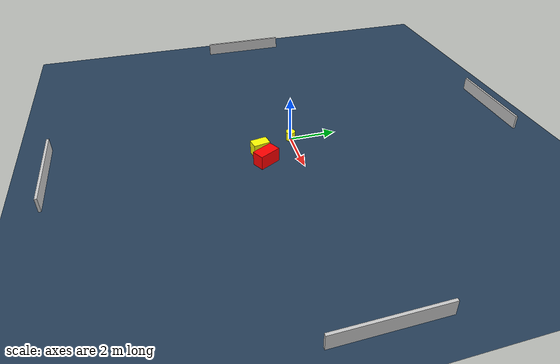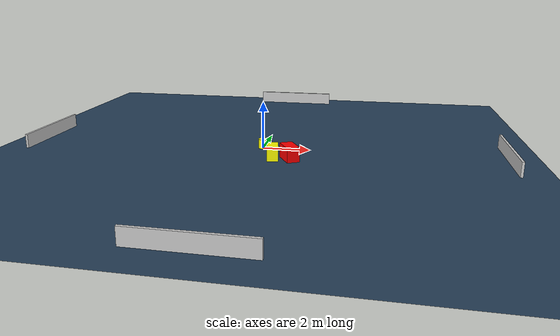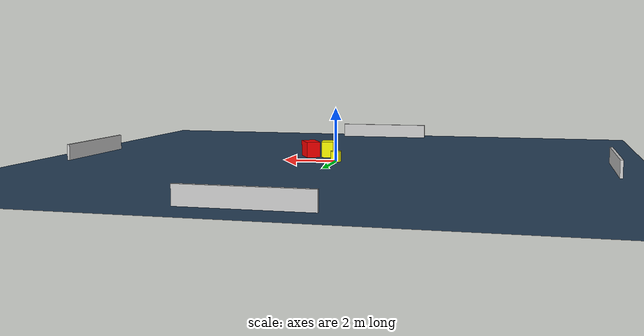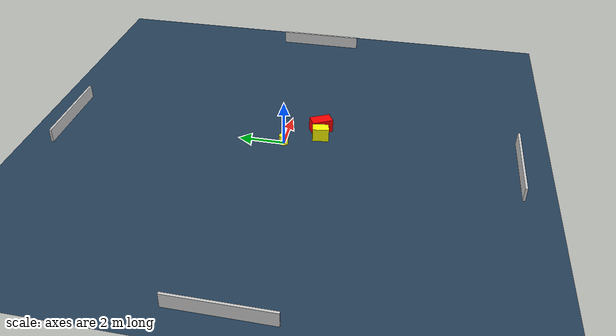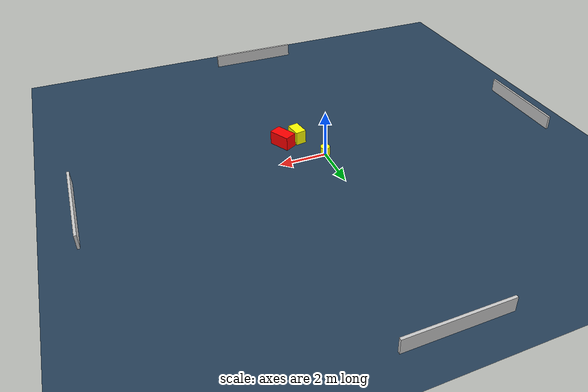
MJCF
<?xml version="1.0" ?>
<mujoco model="generated_environment">
  <option timestep="0.01" integrator="RK4" cone="elliptic"/>
  <default>
    <geom density="1"/>
  </default>
  <asset>
    <texture builtin="gradient" height="3072" name="skybox" rgb1="0.3 0.5 0.7" rgb2="0 0 0" type="skybox" width="512"/>
    <texture builtin="checker" height="300" name="groundplane" rgb1="0.2 0.3 0.4" rgb2="0.1 0.2 0.3" type="2d" width="300"/>
    <material name="groundplane" reflectance="0.2" texrepeat="5 5" texture="groundplane"/>
  </asset>
  <worldbody>
    <light dir="0 0 -1" directional="true" pos="0 0 1.5"/>
    <geom condim="3" friction="0.5 0.005 0.001" material="groundplane" name="floor" pos="0 0 0" size="0 0 0.05" type="plane"/>
    <body name="walls">
      <geom name="wall_1" condim="4" pos="-10.0 0.0 0.3" rgba="0.800000011920929 0.800000011920929 0.800000011920929 1.0" size="0.05 2.0 0.3" type="box"/>
      <geom name="wall_2" condim="4" pos="10.0 0.0 0.3" rgba="0.800000011920929 0.800000011920929 0.800000011920929 1.0" size="0.05 2.0 0.3" type="box"/>
      <geom name="wall_3" condim="4" pos="0.0 -10.0 0.3" rgba="0.800000011920929 0.800000011920929 0.800000011920929 1.0" size="2.0 0.05 0.3" type="box"/>
      <geom name="wall_4" condim="4" pos="0.0 10.0 0.3" rgba="0.800000011920929 0.800000011920929 0.800000011920929 1.0" size="2.0 0.05 0.3" type="box"/>
    </body>
    <body name="robot">
      <joint name="joint_x" type="slide" pos="0 0 0" axis="1 0 0"/>
      <joint name="joint_y" type="slide" pos="0 0 0" axis="0 1 0"/>
      <geom name="robot" type="cylinder" pos="0.0 0.0 0.2" size="0.2 0.2 0.0" mass="5.0" friction="1.0 0.005 0.0001" condim="4" rgba="1.0 1.0 0.0 1.0"/>
    </body>
    <body name="obstacle_1_movable">
      <geom name="obstacle_1_movable" condim="4" pos="0.6863410917977649 -1.5164049233392847 0.3" euler="0 0 190.02318519977456" friction="0.0 0.005 0.001" rgba="1.0 1.0 0.0 1.0" size="0.22966216853005086 0.3560906094458163 0.3" type="box" mass="0.1"/>
      <joint type="free"/>
    </body>
    <body name="obstacle_2_static">
      <geom name="obstacle_2_static" condim="4" pos="1.3634431432939482 -1.4285209937969998 0.3" euler="0 0 208.43023075397645" friction="0.0 0.005 0.001" rgba="1.0 0.0 0.0 1.0" size="0.26610284358941 0.4677740637575732 0.3" type="box"/>
    </body>
  </worldbody>
  <actuator>
    <motor name="actuator_x" joint="joint_x" gear="1" ctrlrange="-1 1"/>
    <motor name="actuator_y" joint="joint_y" gear="1" ctrlrange="-1 1"/>
  </actuator>
</mujoco>
